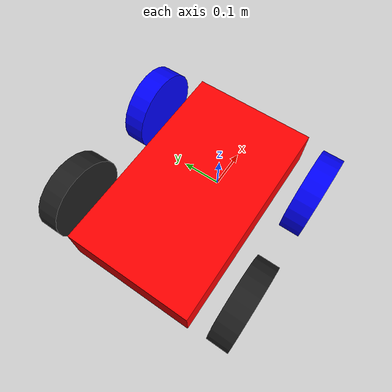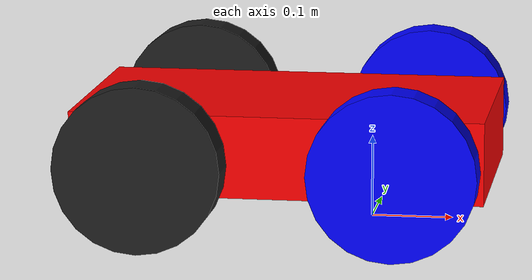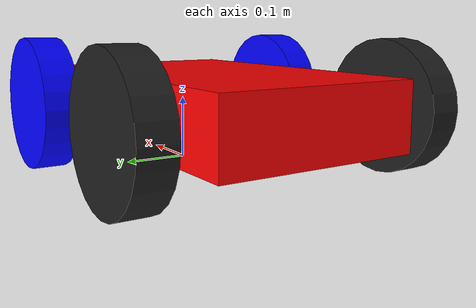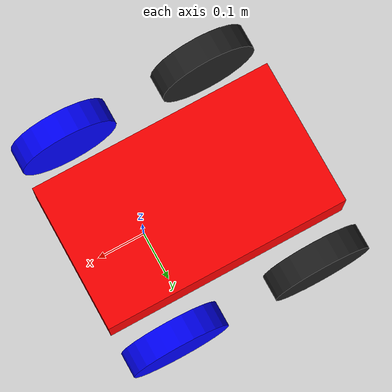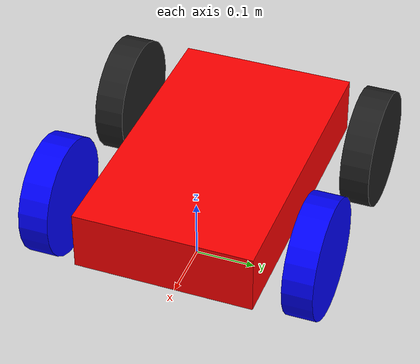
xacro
<?xml version="1.0"?>
<robot xmlns:xacro="http://www.ros.org/wiki/xacro">

    <xacro:property name="chassis_length" value="0.5"/>
    <xacro:property name="chassis_width" value="0.3"/>
    <xacro:property name="wheel_radius" value="0.1"/>

    <link name="base_link"></link>

    <link name="base_footprint"></link>

    <joint name="base_footprint_joint" type="fixed">
        <parent link="base_footprint"/>
        <child link="base_link"/>
        <origin xyz="0 0 ${wheel_radius}"/>
    </joint>

    <joint name="chassis_joint" type="fixed">
        <parent link="base_link"/>
        <child link="chassis"/>
        <origin xyz="-0.1 0 0"/>
    </joint>

    <link name="chassis">
        <visual>
            <origin xyz="0 0 0" rpy="0 0 0"/>
            <geometry><box size="${chassis_length} ${chassis_width} 0.1"/></geometry>
            <material name="red">
                <color rgba="1.0 0.0 0.0 1.0"/>
            </material>
        </visual>

        <collision>
            <origin xyz="0 0 0.05" rpy="0 0 0"/>
            <geometry><box size="0.4 0.15 0.1"/></geometry>
        </collision>

        <inertial>
            <origin xyz="0 0 -0.1" rpy="0 0 0"/>
            <mass value="5.0"/>
            <inertia ixx="0.1" ixy="0" ixz="0" iyy="0.1" iyz="0" izz="0.1"/>
        </inertial>
    </link>

    <xacro:macro name="rear_wheel" params="prefix y_reflect">
        <joint name="${prefix}_wheel_joint" type="continuous">
            <parent link="chassis"/>
            <child link="${prefix}_wheel"/>
            <origin xyz="-0.15 ${y_reflect * 0.22} 0" rpy="${pi/2} 0 0"/>
            <axis xyz="0 0 -1"/>
            <limit effort="1000.0" velocity="100.0"/>
            <dynamics damping="0.1" friction="0.1"/>
        </joint>
        <link name="${prefix}_wheel">
            <visual>
                <geometry>
                    <cylinder radius="${wheel_radius}" length="0.05"/>
                </geometry>
            </visual>
            <collision>
                <origin xyz="0 0 0" rpy="0 0 0"/>
                <geometry><cylinder radius="${wheel_radius}" length="0.05"/></geometry>
            </collision>
            <inertial>
                <mass value="0.5"/>
                <inertia ixx="0.001" ixy="0" ixz="0" iyy="0.001" iyz="0" izz="0.001"/>
            </inertial>
        </link>
    </xacro:macro>

    <xacro:rear_wheel prefix="rear_left" y_reflect="1" />
    <xacro:rear_wheel prefix="rear_right" y_reflect="-1" />

    <xacro:macro name="front_wheel" params="prefix y_reflect">
        <joint name="${prefix}_steer_joint" type="revolute">
            <parent link="chassis"/>
            <child link="${prefix}_steer_link"/>
            <origin xyz="0.15 ${y_reflect * 0.22} 0" rpy="0 0 0"/>
            <axis xyz="0 0 1"/>
            <limit lower="-0.5" upper="0.5" effort="100" velocity="1.0"/>
            <dynamics damping="5.0" friction="2.0"/>
        </joint>
        <link name="${prefix}_steer_link">
            <inertial>
                <mass value="0.2"/>
                <inertia ixx="0.01" ixy="0" ixz="0" iyy="0.01" iyz="0" izz="0.01"/>
          </inertial>
        </link>

        <joint name="${prefix}_wheel_joint" type="continuous">
            <parent link="${prefix}_steer_link"/>
            <child link="${prefix}_wheel"/>
            <origin xyz="0 0 0" rpy="${pi/2} 0 0"/>
            <axis xyz="0 0 -1"/>
            <limit effort="100.0" velocity="100.0"/>
            <dynamics damping="0.1" friction="0.1"/>
        </joint>
        <link name="${prefix}_wheel">
            <visual>
                <geometry><cylinder radius="${wheel_radius}" length="0.05"/></geometry>
                <material name="blue">
                    <color rgba="0.0 0.0 1.0 1.0"/>
                </material>
            </visual>
            <collision>
                <geometry><cylinder radius="${wheel_radius}" length="0.05"/></geometry>
            </collision>
            <inertial>
                <mass value="0.5"/>
                <inertia ixx="0.01" ixy="0" ixz="0" iyy="0.01" iyz="0" izz="0.01"/>
            </inertial>
        </link>
    </xacro:macro>

    <xacro:front_wheel prefix="front_left" y_reflect="1" />
    <xacro:front_wheel prefix="front_right" y_reflect="-1" />

    <gazebo reference="chassis">
        <material>Gazebo/Red</material>
    </gazebo>

    <gazebo reference="front_left_wheel">
        <material>Gazebo/Blue</material>
        <mu1>1.5</mu1>
        <mu2>1.5</mu2>
        <kp>500000.0</kp>
        <kd>10.0</kd>
        <minDepth>0.001</minDepth> </gazebo>

    <gazebo reference="front_right_wheel">
        <material>Gazebo/Blue</material>
        <mu1>1.5</mu1>
        <mu2>1.5</mu2>
        <kp>500000.0</kp>
        <kd>10.0</kd>
        <minDepth>0.001</minDepth>
    </gazebo>

    <gazebo reference="rear_left_wheel">
        <material>Gazebo/Black</material>
        <mu1>1.5</mu1>
        <mu2>1.5</mu2>
        <kp>500000.0</kp>
        <kd>10.0</kd>
        <minDepth>0.001</minDepth>
    </gazebo>

    <gazebo reference="rear_right_wheel">
        <material>Gazebo/Black</material>
        <mu1>1.5</mu1>
        <mu2>1.5</mu2>
        <kp>500000.0</kp>
        <kd>10.0</kd>
        <minDepth>0.001</minDepth>
    </gazebo>

</robot>
